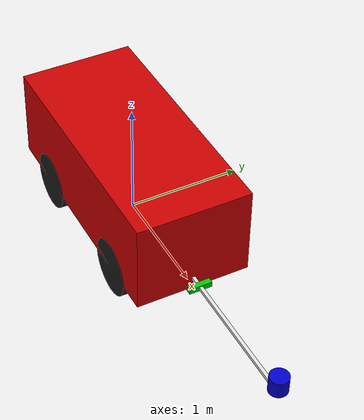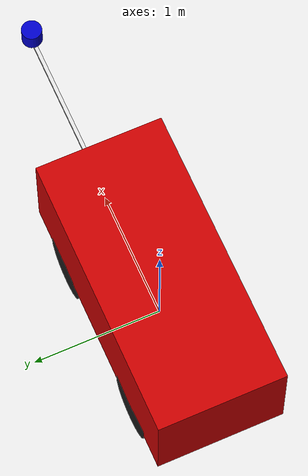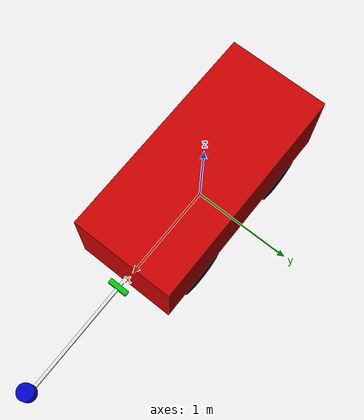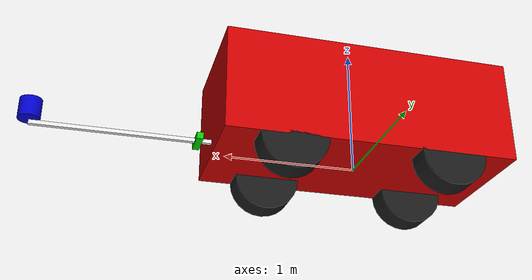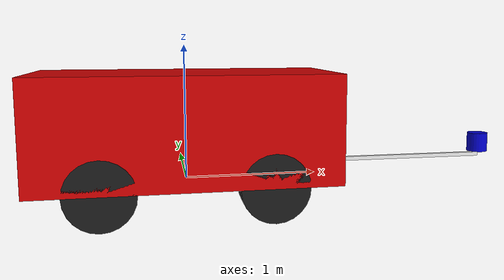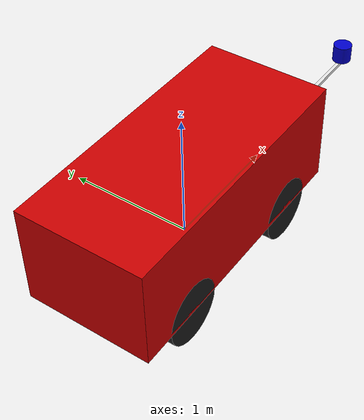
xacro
<?xml version="1.0"?>
<!--
FSAC直线加速赛车模型（修正版）
- 适配3米锥筒间距
- 激光雷达距离惯导2.4m，高度0.8m（任务要求）
- 双电机后驱
- 随机偏航角：±3度
-->
<robot name="fsac_vehicle" xmlns:xacro="http://www.ros.org/wiki/xacro">

  <!-- =====================================================
       车辆参数（小型化适配）
       ===================================================== -->
  <xacro:property name="wheelbase" value="1.2" />        <!-- 轴距1.2m -->
  <xacro:property name="track_width" value="0.8" />      <!-- 轮距0.8m -->
  <xacro:property name="wheel_radius" value="0.25" />    <!-- 车轮半径 -->
  <xacro:property name="wheel_width" value="0.2" />      <!-- 车轮宽度 -->

  <!-- 车身尺寸（小型化） -->
  <xacro:property name="body_length" value="2.2" />      <!-- 车身长度2.2m -->
  <xacro:property name="body_width" value="1.0" />       <!-- 车身宽度1.0m -->
  <xacro:property name="body_height" value="0.8" />      <!-- 车身高度0.8m -->

  <!-- 激光雷达偏移（任务要求：距离惯导2.4m，高度0.2m） -->
  <xacro:property name="lidar_distance" value="2.4" />   <!-- 距离惯导2.4m -->
  <xacro:property name="lidar_height" value="0.2" />     <!-- 高度0.2m -->
  <!-- 假设雷达在车辆前方 -->
  <xacro:property name="lidar_x_offset" value="${lidar_distance}" />
  <xacro:property name="lidar_y_offset" value="0" />
  <xacro:property name="lidar_z_offset" value="${lidar_height}" />

  <!-- =====================================================
       材料定义
       ===================================================== -->
  <material name="red">
    <color rgba="0.8 0.0 0.0 1.0"/>
  </material>

  <material name="blue">
    <color rgba="0.0 0.0 0.8 1.0"/>
  </material>

  <material name="black">
    <color rgba="0.1 0.1 0.1 1.0"/>
  </material>

  <material name="white">
    <color rgba="0.9 0.9 0.9 1.0"/>
  </material>

  <material name="green">
    <color rgba="0.0 0.8 0.0 1.0"/>
  </material>

  <!-- =====================================================
       基础坐标系（惯导位置）
       ===================================================== -->
  <link name="base_link">
    <visual>
      <origin xyz="0 0 0.4" rpy="0 0 0"/>
      <geometry>
        <box size="${body_length} ${body_width} ${body_height}"/>
      </geometry>
      <material name="red"/>
    </visual>
    <collision>
      <origin xyz="0 0 0.4" rpy="0 0 0"/>
      <geometry>
        <box size="${body_length} ${body_width} ${body_height}"/>
      </geometry>
    </collision>
    <inertial>
      <origin xyz="0 0 0.4" rpy="0 0 0"/>
      <mass value="300.0"/>
      <inertia ixx="50" ixy="0" ixz="0" iyy="80" iyz="0" izz="100"/>
    </inertial>
  </link>

  <!-- =====================================================
       惯导传感器（IMU）- 标记惯导位置
       ===================================================== -->
  <joint name="imu_joint" type="fixed">
    <parent link="base_link"/>
    <child link="imu_link"/>
    <origin xyz="0 0 0.2" rpy="0 0 0"/>  <!-- 惯导在base_link中心稍上方 -->
  </joint>

  <link name="imu_link">
    <visual>
      <origin xyz="0 0 0" rpy="0 0 0"/>
      <geometry>
        <box size="0.1 0.1 0.05"/>  <!-- 小盒子标记惯导位置 -->
      </geometry>
      <material name="green"/>
    </visual>
    <collision>
      <origin xyz="0 0 0" rpy="0 0 0"/>
      <geometry>
        <box size="0.1 0.1 0.05"/>
      </geometry>
    </collision>
    <inertial>
      <origin xyz="0 0 0" rpy="0 0 0"/>
      <mass value="0.5"/>
      <inertia ixx="0.01" ixy="0" ixz="0" iyy="0.01" iyz="0" izz="0.01"/>
    </inertial>
  </link>

  <!-- =====================================================
       前轮（转向轮）
       ===================================================== -->
  <!-- 左前轮 -->
  <joint name="front_left_wheel_joint" type="revolute">
    <parent link="base_link"/>
    <child link="front_left_wheel_link"/>
    <origin xyz="${wheelbase/2} ${track_width/2} 0" rpy="0 0 0"/>
    <axis xyz="0 0 1"/>
    <limit lower="-0.6" upper="0.6" effort="50" velocity="10"/>
  </joint>

  <link name="front_left_wheel_link">
    <visual>
      <origin xyz="0 0 0" rpy="1.5708 0 0"/>
      <geometry>
        <cylinder radius="${wheel_radius}" length="${wheel_width}"/>
      </geometry>
      <material name="black"/>
    </visual>
    <collision>
      <origin xyz="0 0 0" rpy="1.5708 0 0"/>
      <geometry>
        <cylinder radius="${wheel_radius}" length="${wheel_width}"/>
      </geometry>
    </collision>
    <inertial>
      <origin xyz="0 0 0" rpy="0 0 0"/>
      <mass value="8.0"/>
      <inertia ixx="0.5" ixy="0" ixz="0" iyy="0.5" iyz="0" izz="1"/>
    </inertial>
  </link>

  <!-- 右前轮 -->
  <joint name="front_right_wheel_joint" type="revolute">
    <parent link="base_link"/>
    <child link="front_right_wheel_link"/>
    <origin xyz="${wheelbase/2} ${-track_width/2} 0" rpy="0 0 0"/>
    <axis xyz="0 0 1"/>
    <limit lower="-0.6" upper="0.6" effort="50" velocity="10"/>
  </joint>

  <link name="front_right_wheel_link">
    <visual>
      <origin xyz="0 0 0" rpy="1.5708 0 0"/>
      <geometry>
        <cylinder radius="${wheel_radius}" length="${wheel_width}"/>
      </geometry>
      <material name="black"/>
    </visual>
    <collision>
      <origin xyz="0 0 0" rpy="1.5708 0 0"/>
      <geometry>
        <cylinder radius="${wheel_radius}" length="${wheel_width}"/>
      </geometry>
    </collision>
    <inertial>
      <origin xyz="0 0 0" rpy="0 0 0"/>
      <mass value="8.0"/>
      <inertia ixx="0.5" ixy="0" ixz="0" iyy="0.5" iyz="0" izz="1"/>
    </inertial>
  </link>

  <!-- =====================================================
       后轮（驱动轮 - 双电机后驱）
       ===================================================== -->
  <!-- 左后轮 -->
  <joint name="rear_left_wheel_joint" type="continuous">
    <parent link="base_link"/>
    <child link="rear_left_wheel_link"/>
    <origin xyz="${-wheelbase/2} ${track_width/2} 0" rpy="0 0 0"/>
    <axis xyz="0 1 0"/>
  </joint>

  <link name="rear_left_wheel_link">
    <visual>
      <origin xyz="0 0 0" rpy="1.5708 0 0"/>
      <geometry>
        <cylinder radius="${wheel_radius}" length="${wheel_width}"/>
      </geometry>
      <material name="black"/>
    </visual>
    <collision>
      <origin xyz="0 0 0" rpy="1.5708 0 0"/>
      <geometry>
        <cylinder radius="${wheel_radius}" length="${wheel_width}"/>
      </geometry>
    </collision>
    <inertial>
      <origin xyz="0 0 0" rpy="0 0 0"/>
      <mass value="10.0"/>
      <inertia ixx="0.8" ixy="0" ixz="0" iyy="0.8" iyz="0" izz="1.5"/>
    </inertial>
  </link>

  <!-- 右后轮 -->
  <joint name="rear_right_wheel_joint" type="continuous">
    <parent link="base_link"/>
    <child link="rear_right_wheel_link"/>
    <origin xyz="${-wheelbase/2} ${-track_width/2} 0" rpy="0 0 0"/>
    <axis xyz="0 1 0"/>
  </joint>

  <link name="rear_right_wheel_link">
    <visual>
      <origin xyz="0 0 0" rpy="1.5708 0 0"/>
      <geometry>
        <cylinder radius="${wheel_radius}" length="${wheel_width}"/>
      </geometry>
      <material name="black"/>
    </visual>
    <collision>
      <origin xyz="0 0 0" rpy="1.5708 0 0"/>
      <geometry>
        <cylinder radius="${wheel_radius}" length="${wheel_width}"/>
      </geometry>
    </collision>
    <inertial>
      <origin xyz="0 0 0" rpy="0 0 0"/>
      <mass value="10.0"/>
      <inertia ixx="0.8" ixy="0" ixz="0" iyy="0.8" iyz="0" izz="1.5"/>
    </inertial>
  </link>

  <!-- =====================================================
       传感器：激光雷达（距离惯导2.4m，高度0.8m）
       ===================================================== -->
  <joint name="lidar_joint" type="fixed">
    <parent link="base_link"/>
    <child link="lidar_link"/>
    <!-- 距离惯导2.4m，高度0.8m（任务要求） -->
    <origin xyz="${lidar_x_offset} ${lidar_y_offset} ${lidar_z_offset}" rpy="0 0 0"/>
  </joint>

  <link name="lidar_link">
    <visual>
      <origin xyz="0 0 0" rpy="0 0 0"/>
      <geometry>
        <cylinder radius="0.08" length="0.15"/>
      </geometry>
      <material name="blue"/>
    </visual>
    <collision>
      <origin xyz="0 0 0" rpy="0 0 0"/>
      <geometry>
        <cylinder radius="0.08" length="0.15"/>
      </geometry>
    </collision>
    <inertial>
      <origin xyz="0 0 0" rpy="0 0 0"/>
      <mass value="1.5"/>
      <inertia ixx="0.05" ixy="0" ixz="0" iyy="0.05" iyz="0" izz="0.05"/>
    </inertial>
  </link>

  <!-- =====================================================
       雷达支撑结构（可视化距离关系）
       ===================================================== -->
  <joint name="lidar_support_joint" type="fixed">
    <parent link="base_link"/>
    <child link="lidar_support_link"/>
    <origin xyz="${lidar_distance/2} 0 ${lidar_height/2}" rpy="0 0 0"/>
  </joint>

  <link name="lidar_support_link">
    <visual>
      <origin xyz="0 0 0" rpy="0 0 0"/>
      <geometry>
        <box size="${lidar_distance} 0.03 0.03"/>  <!-- 细杆连接惯导和雷达 -->
      </geometry>
      <material name="white"/>
    </visual>
    <collision>
      <origin xyz="0 0 0" rpy="0 0 0"/>
      <geometry>
        <box size="${lidar_distance} 0.03 0.03"/>
      </geometry>
    </collision>
    <inertial>
      <origin xyz="0 0 0" rpy="0 0 0"/>
      <mass value="1.0"/>
      <inertia ixx="0.1" ixy="0" ixz="0" iyy="0.2" iyz="0" izz="0.2"/>
    </inertial>
  </link>

  <!-- =====================================================
       距离标记（可视化2.4m距离）
       ===================================================== -->
  <joint name="distance_marker_joint" type="fixed">
    <parent link="base_link"/>
    <child link="distance_marker_link"/>
    <origin xyz="${lidar_distance/2} 0 0.1" rpy="0 0 0"/>
  </joint>

  <link name="distance_marker_link">
    <visual>
      <origin xyz="0 0 0" rpy="0 0 0"/>
      <geometry>
        <box size="0.05 0.2 0.05"/>  <!-- 距离标记 -->
      </geometry>
      <material name="green"/>
    </visual>
    <inertial>
      <origin xyz="0 0 0" rpy="0 0 0"/>
      <mass value="0.1"/>
      <inertia ixx="0.01" ixy="0" ixz="0" iyy="0.01" iyz="0" izz="0.01"/>
    </inertial>
  </link>

  <!-- =====================================================
       Gazebo插件：车辆控制
       ===================================================== -->
  <gazebo>
    <plugin name="ackermann_drive_controller" filename="libgazebo_ros_ackermann_drive.so">
      <commandTopic>ackermann_cmd</commandTopic>
      <odometryTopic>odom</odometryTopic>
      <odometryFrame>odom</odometryFrame>
      <odometrySource>world</odometrySource>
      <publishOdomTF>true</publishOdomTF>
      <robotBaseFrame>base_link</robotBaseFrame>
      <publishWheelTF>false</publishWheelTF>
      <publishTf>true</publishTf>
      <publishWheelJointState>true</publishWheelJointState>

      <frontLeftJoint>front_left_wheel_joint</frontLeftJoint>
      <frontRightJoint>front_right_wheel_joint</frontRightJoint>
      <rearLeftJoint>rear_left_wheel_joint</rearLeftJoint>
      <rearRightJoint>rear_right_wheel_joint</rearRightJoint>

      <wheelSeparation>${track_width}</wheelSeparation>
      <wheelBase>${wheelbase}</wheelBase>
      <wheelDiameter>${2*wheel_radius}</wheelDiameter>

      <!-- 小型车性能参数 -->
      <maxSteerAngle>0.6</maxSteerAngle>
      <maxSpeed>12.0</maxSpeed>
      <maxForce>2000.0</maxForce>

      <!-- 物理参数 -->
      <torque>800</torque>
      <topicName>ackermann_cmd</topicName>
    </plugin>
  </gazebo>

  <!-- =====================================================
       Gazebo插件：激光雷达
       ===================================================== -->
  <gazebo reference="lidar_link">
    <material>Gazebo/Blue</material>
    <sensor type="ray" name="lidar_sensor">
      <pose>0 0 0 0 0 0</pose>
      <visualize>true</visualize>
      <update_rate>20</update_rate>
      <ray>
        <scan>
          <horizontal>
            <samples>360</samples>
            <resolution>1</resolution>
            <min_angle>-3.14159</min_angle>
            <max_angle>3.14159</max_angle>
          </horizontal>
        </scan>
        <range>
          <min>0.2</min>
          <max>30.0</max>
          <resolution>0.01</resolution>
        </range>
        <noise>
          <type>gaussian</type>
          <mean>0.0</mean>
          <stddev>0.01</stddev>
        </noise>
      </ray>
      <plugin name="gazebo_ros_lidar_controller" filename="libgazebo_ros_laser.so">
        <topicName>/perception/lidar/scan</topicName>
        <frameName>lidar_link</frameName>
      </plugin>
    </sensor>
  </gazebo>

  <!-- =====================================================
       Gazebo插件：惯导（IMU）
       ===================================================== -->
  <gazebo reference="imu_link">
    <material>Gazebo/Green</material>
    <sensor name="imu_sensor" type="imu">
      <always_on>true</always_on>
      <update_rate>100</update_rate>
      <visualize>true</visualize>
      <topic>__default_topic__</topic>
      <plugin filename="libgazebo_ros_imu_sensor.so" name="imu_plugin">
        <topicName>/imu/data</topicName>
        <bodyName>imu_link</bodyName>
        <updateRateHZ>100.0</updateRateHZ>
        <gaussianNoise>0.0</gaussianNoise>
        <xyzOffset>0 0 0</xyzOffset>
        <rpyOffset>0 0 0</rpyOffset>
        <frameName>imu_link</frameName>
      </plugin>
    </sensor>
  </gazebo>

  <!-- =====================================================
       Gazebo材料设置
       ===================================================== -->
  <gazebo reference="base_link">
    <material>Gazebo/Red</material>
  </gazebo>

  <gazebo reference="imu_link">
    <material>Gazebo/Green</material>
  </gazebo>

  <gazebo reference="front_left_wheel_link">
    <material>Gazebo/Black</material>
    <mu1>1.2</mu1>
    <mu2>1.2</mu2>
  </gazebo>

  <gazebo reference="front_right_wheel_link">
    <material>Gazebo/Black</material>
    <mu1>1.2</mu1>
    <mu2>1.2</mu2>
  </gazebo>

  <gazebo reference="rear_left_wheel_link">
    <material>Gazebo/Black</material>
    <mu1>1.5</mu1>
    <mu2>1.5</mu2>
  </gazebo>

  <gazebo reference="rear_right_wheel_link">
    <material>Gazebo/Black</material>
    <mu1>1.5</mu1>
    <mu2>1.5</mu2>
  </gazebo>

  <gazebo reference="lidar_support_link">
    <material>Gazebo/White</material>
  </gazebo>

</robot>
